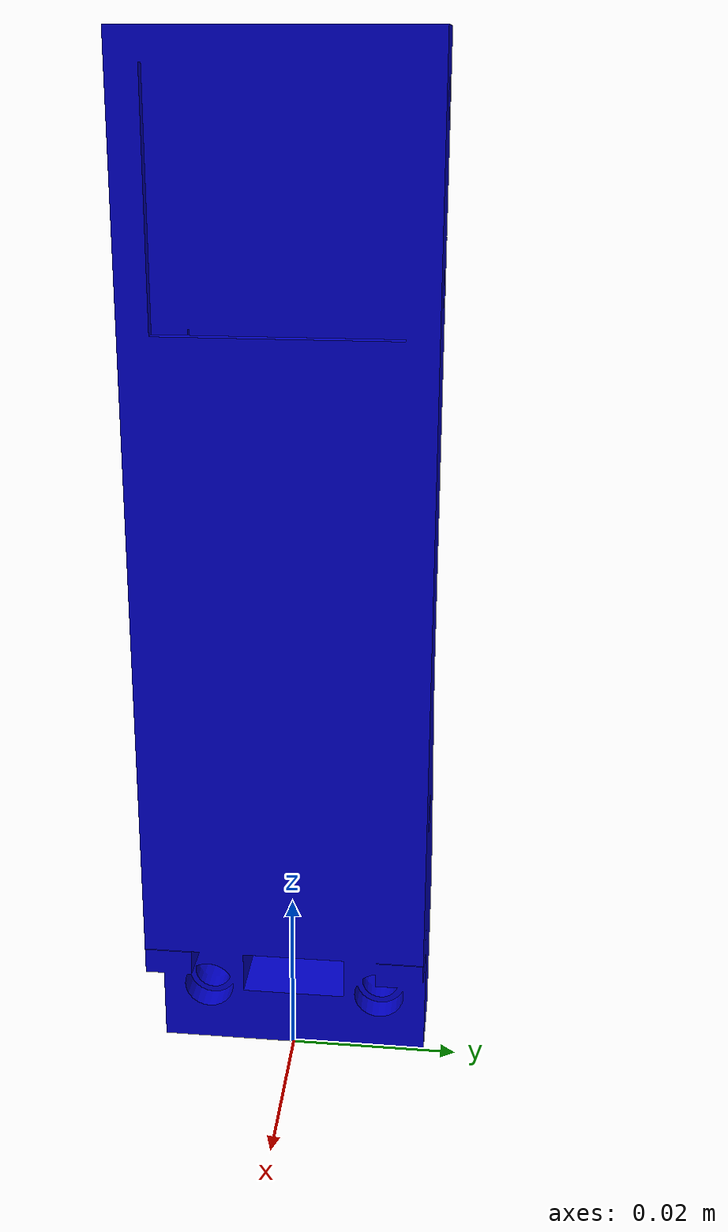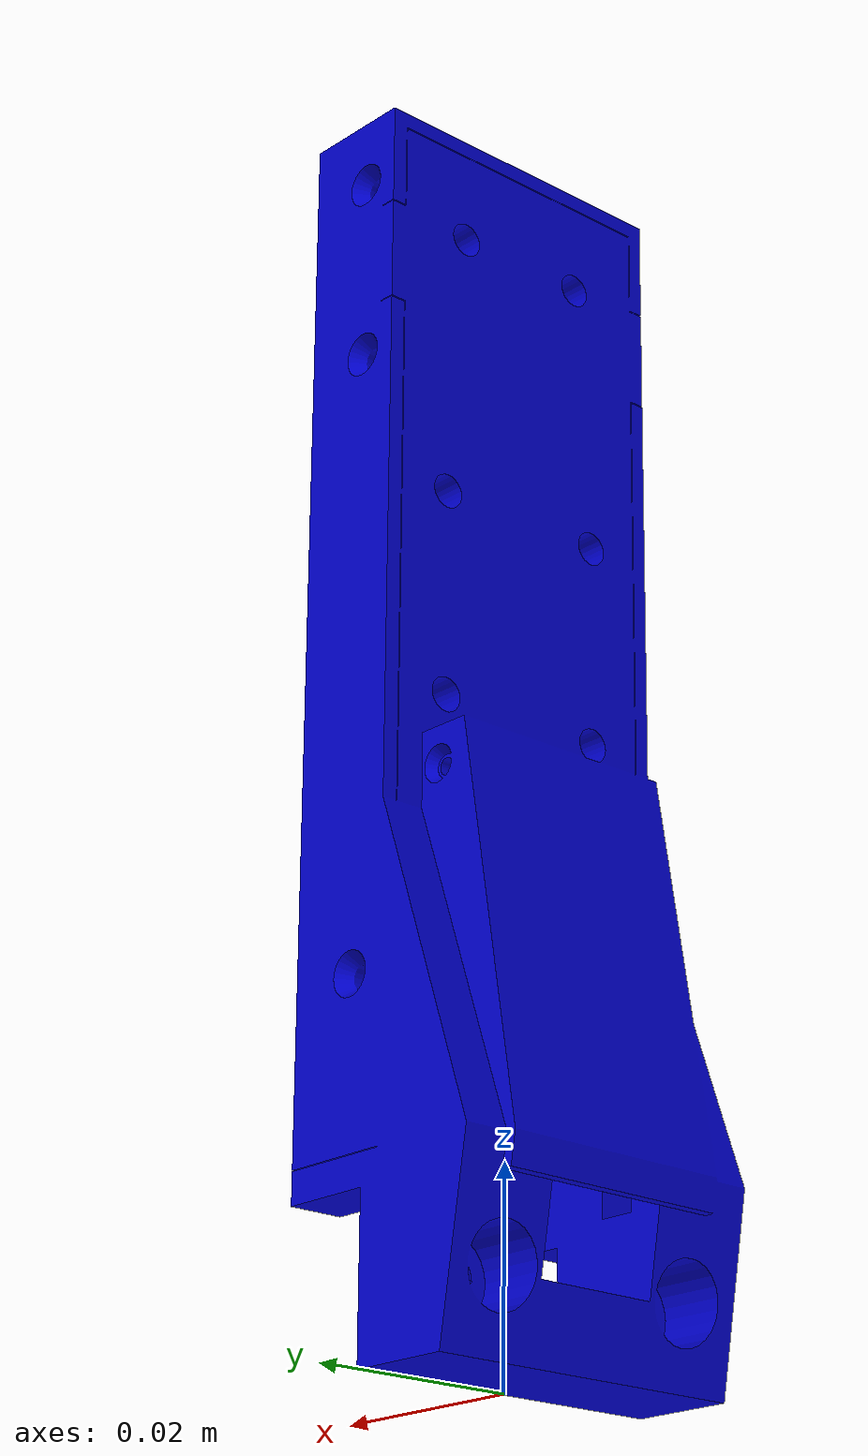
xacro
<?xml version="1.0"?>
<robot name="sun_finger_v3" xmlns:xacro="http://www.ros.org/wiki/xacro">

  <!-- Import finger macro -->
  <xacro:include filename="$(find sun_tactile_simulation)/urdf/sun_finger_v3N.xacro" />

  <xacro:sun_finger_v3N
    scale="1.0"
    base_link="base_link"
    prefix="finger0/"
    create_sensor_link="true"
  />

</robot>

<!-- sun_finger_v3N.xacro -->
<robot xmlns:xacro="http://www.ros.org/wiki/xacro">

<xacro:macro
    name="sun_finger_v3N"
    params="
        scale:=1.0
        base_link:=base_link
        prefix:=''
        create_sensor_link:=true
        "
>

    <!-- cad_scale to convert from cad to [m] -->
    <xacro:property name="cad_scale" value="0.001"/>
    <!-- local_scale cad to input scale -->
    <xacro:property name="local_scale" value="${cad_scale*scale}"/>
    <!-- origin of mesh wrt link frame -->
    <xacro:property name="mesh_origin">
        <!--origin xyz="${-56.9550247192*local_scale} ${-45.514275551*local_scale} ${0.00445556640625*local_scale}" rpy="${pi/2.0} ${0.0} ${pi/2}" /-->
    </xacro:property>

    <!-- finger link -->
    <link name="${prefix}${base_link}">
        <visual>
            <xacro:insert_block name="mesh_origin" />
            <geometry>
                <mesh
                    filename="package://sun_tactile_simulation/meshes/visual/sun_finger_v3N.stl"
                    scale="${local_scale} ${local_scale} ${local_scale}"
                />
            </geometry>
            <material name="blue">
                <color rgba="0 0 0.8 1"/>
            </material>
        </visual>
        <collision>
            <xacro:insert_block name="mesh_origin" />
            <geometry>
                <mesh
                    filename="package://sun_tactile_simulation/meshes/collision/sun_finger_v3N.stl"
                    scale="${local_scale} ${local_scale} ${local_scale}"
                />
            </geometry>
        </collision>
    </link> <!-- end finger link -->

    <!-- sensor frame -->
    <xacro:if value="${create_sensor_link}">
        <link name="${prefix}sensor_frame" />
        <joint name="${prefix}${base_link}-sensor_frame" type="fixed">
            <parent link="${prefix}${base_link}" />
            <child link="${prefix}sensor_frame" />
            <origin xyz="${-0.020*scale} 0 ${0.1015281938018*scale}" rpy="${pi/2} 0 ${pi/2}" />
        </joint>
    </xacro:if>

</xacro:macro> <!-- end finger macro -->

</robot>
